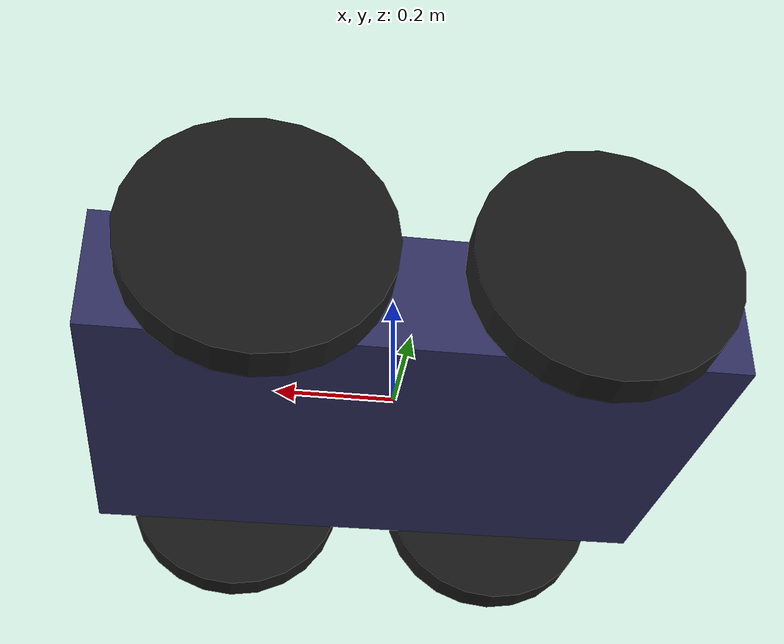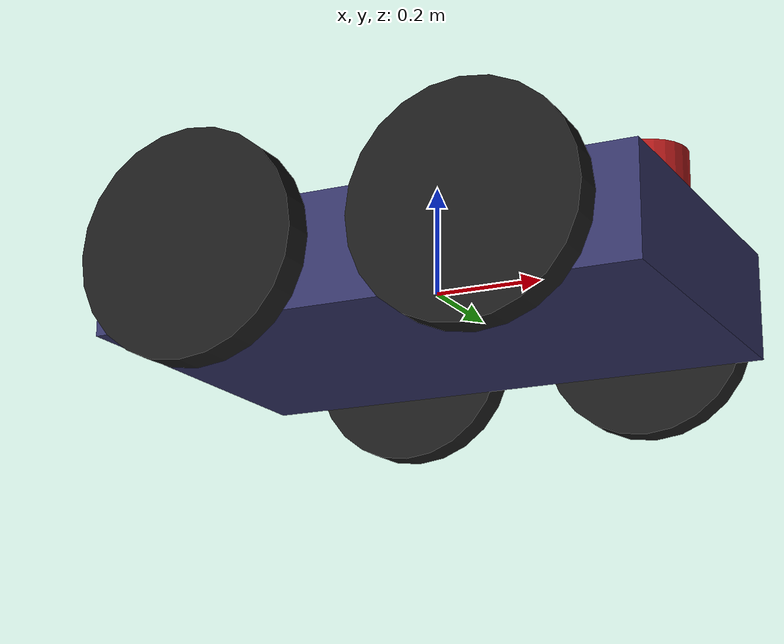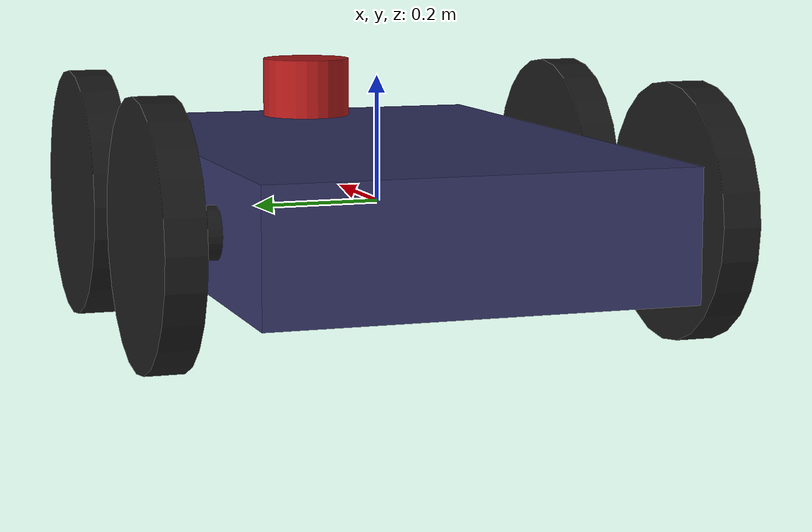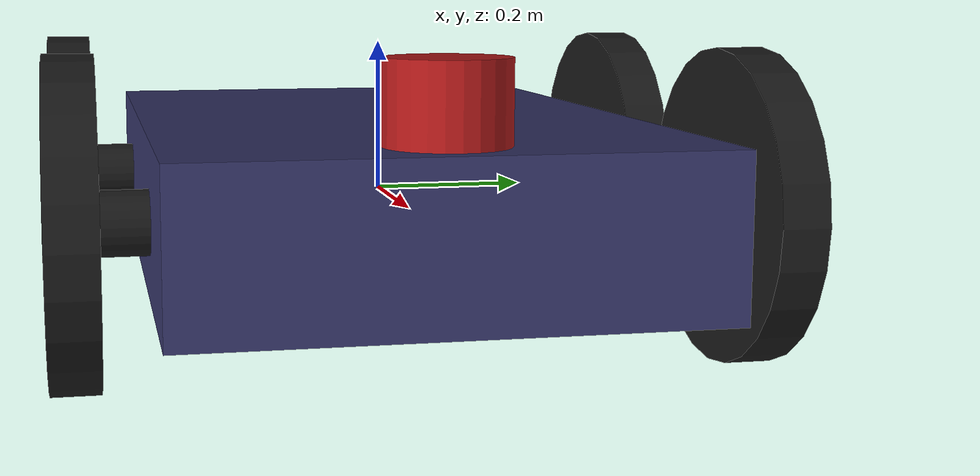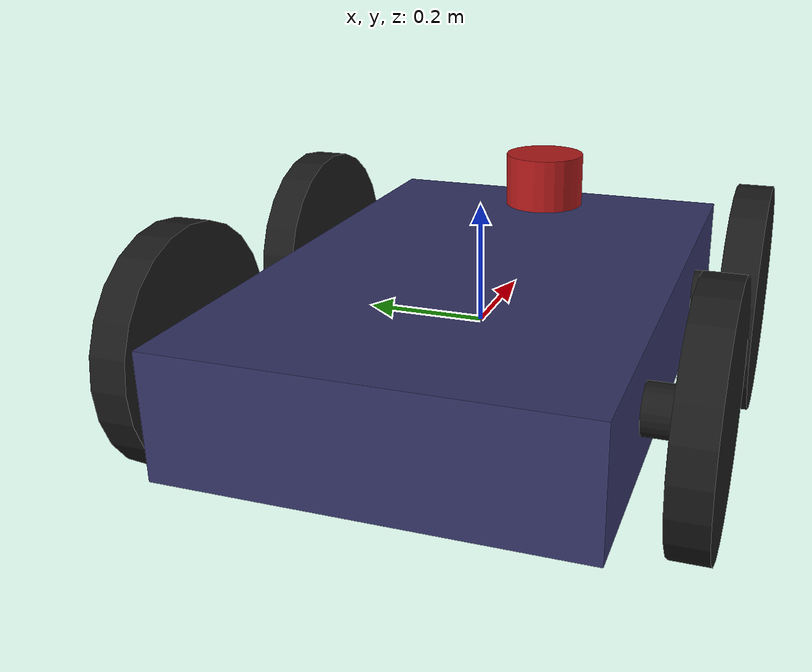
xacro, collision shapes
<?xml version="1.0" ?>

<robot name="robot" xmlns:xacro="http://www.ros.org/wiki/xacro">

    <xacro:include filename="$(find final_project)/urdf/robot.gazebo" />

    <!-- Parameters -->
    <xacro:property name="chassis_mass" value="10" />
    <xacro:property name="pi" value="3.1415926535897931"/>

    <!-- Link - chassis -->
    <link name="link_chassis">
        <inertial>
            <mass value="${chassis_mass}" />
            <origin xyz="0 0 0.3" rpy="0 0 0" />
            <inertia ixx="1.5417" ixy="0" ixz="0" iyy="3.467" iyz="0" izz="4.742" />
        </inertial>

        <collision>
            <geometry>
                <box size="1 0.65 0.2" />
            </geometry>
        </collision>

        <visual>
            <geometry>
                <mesh filename="package://robot_description/meshes/chassis.stl" scale="0.5 0.5 0.5" />
            </geometry>
            <material name="DarkBlue">
                <color rgba="0.2 0.2 0.4 1" />
            </material>
        </visual>
    </link>

    <!-- Joint - chassis / left wheel -->
    <joint name="joint_chassis_left_rear_wheel" type="continuous">
        <origin rpy="0 0 0" xyz="-0.25 0.325 0" />
        <child link="link_left_rear_wheel" />
        <parent link="link_chassis" />
        <axis rpy="0 0 0" xyz="0 1 0" />
        <limit effort="10000" velocity="1000" />
        <joint_properties damping="1.0" friction="1.0" />
    </joint>
    <!-- Link - left wheel -->
    <link name="link_left_rear_wheel">
        <inertial>
            <mass value="1" />
            <origin xyz="0 0 0" rpy="0 0 0" />
            <inertia ixx="0.002526666666667" ixy="0" ixz="0" iyy="0.002526666666667" iyz="0" izz="0.005"/>
        </inertial>

        <!-- Tires -->
        <collision>
            <origin rpy="${pi/2} 0 0" xyz="0 0.09 0" />
            <geometry>
                <cylinder length="0.06" radius="0.2"/>
            </geometry>
        </collision>
        <visual>
            <origin rpy="${pi/2} 0 0" xyz="0 0.09 0" />
            <geometry>
                <mesh filename="package://robot_description/meshes/wheel.stl" scale="0.5 0.5 0.5" />
            </geometry>
            <material name="Black">
                <color rgba="0.1 0.1 0.1 1" />
            </material>
        </visual>

        <!-- Axle -->
        <collision>
            <origin rpy="${pi/2} 0 0" xyz="0 0.03 0" />
            <geometry>
                <cylinder length="0.12" radius="0.04"/>
            </geometry>
        </collision>
        <visual>
            <origin rpy="${pi/2} 0 0" xyz="0 0.03 0" />
            <geometry>
                <cylinder length="0.12" radius="0.04"/>
            </geometry>
            <material name="Grey">
                <color rgba="0.6 0.6 0.6 1" />
            </material>
        </visual>

        <!-- Hubcap -->
        <visual>
            <origin rpy="${pi/2} 0 0" xyz="0 0.09 0" />
            <geometry>
                <box size="0.01 0.25 0.01" />
            </geometry>
            <material name="Grey">
                <color rgba="0.6 0.6 0.6 1" />
            </material>
        </visual>
    </link>

    <!-- Joint - chassis / left front wheel -->
    <joint name="joint_chassis_left_front_wheel" type="continuous">
        <origin rpy="0 0 0" xyz="0.25 0.325 0" />
        <child link="link_left_front_wheel" />
        <parent link="link_chassis" />
        <axis rpy="0 0 0" xyz="0 1 0" />
        <limit effort="10000" velocity="1000" />
        <joint_properties damping="1.0" friction="1.0" />
    </joint>
    <!-- Link - left front wheel -->
    <link name="link_left_front_wheel">
        <inertial>
            <mass value="1" />
            <origin xyz="0 0 0" rpy="0 0 0" />
            <inertia ixx="0.002526666666667" ixy="0" ixz="0" iyy="0.002526666666667" iyz="0" izz="0.005"/>
        </inertial>

        <!-- Tires -->
        <collision>
            <origin rpy="${pi/2} 0 0" xyz="0 0.09 0" />
            <geometry>
                <cylinder length="0.06" radius="0.2"/>
            </geometry>
        </collision>
        <visual>
            <origin rpy="${pi/2} 0 0" xyz="0 0.09 0" />
            <geometry>
                <mesh filename="package://robot_description/meshes/wheel.stl" scale="0.5 0.5 0.5" />
            </geometry>
            <material name="Black">
                <color rgba="0.1 0.1 0.1 1" />
            </material>
        </visual>

        <!-- Axle -->
        <collision>
            <origin rpy="${pi/2} 0 0" xyz="0 0.03 0" />
            <geometry>
                <cylinder length="0.12" radius="0.04"/>
            </geometry>
        </collision>
        <visual>
            <origin rpy="${pi/2} 0 0" xyz="0 0.03 0" />
            <geometry>
                <cylinder length="0.12" radius="0.04"/>
            </geometry>
            <material name="Grey">
                <color rgba="0.6 0.6 0.6 1" />
            </material>
        </visual>

        <!-- Hubcap -->
        <visual>
            <origin rpy="${pi/2} 0 0" xyz="0 0.09 0" />
            <geometry>
                <box size="0.01 0.25 0.01" />
            </geometry>
            <material name="Grey">
                <color rgba="0.6 0.6 0.6 1" />
            </material>
        </visual>
    </link>

    <!-- Joint - chassis / right wheel -->
    <joint name="joint_chassis_right_rear_wheel" type="continuous">
        <origin rpy="0 0 0" xyz="-0.25 -0.325 0" />
        <child link="link_right_rear_wheel" />
        <parent link="link_chassis" />
        <axis rpy="0 0 0" xyz="0 1 0" />
        <limit effort="10000" velocity="1000" />
        <joint_properties damping="1.0" friction="1.0" />
    </joint>
    <!-- Link - right wheel -->
    <link name="link_right_rear_wheel">
        <inertial>
            <mass value="1" />
            <origin xyz="0 0 0" rpy="0 0 0" />
            <inertia ixx="0.002526666666667" ixy="0" ixz="0" iyy="0.002526666666667" iyz="0" izz="0.005"/>
        </inertial>

        <!-- Tires -->
        <collision>
            <origin rpy="${pi/2} 0 0" xyz="0 -0.09 0" />
            <geometry>
                <cylinder length="0.06" radius="0.2"/>
            </geometry>
        </collision>
        <visual>
            <origin rpy="${pi/2} 0 0" xyz="0 -0.09 0" />
            <geometry>
                <mesh filename="package://robot_description/meshes/wheel.stl" scale="0.5 0.5 0.5" />
            </geometry>
            <material name="Black">
                <color rgba="0.1 0.1 0.1 1" />
            </material>
        </visual>

        <!-- Axle -->
        <collision>
            <origin rpy="${pi/2} 0 0" xyz="0 -0.03 0" />
            <geometry>
                <cylinder length="0.12" radius="0.04"/>
            </geometry>
        </collision>
        <visual>
            <origin rpy="${pi/2} 0 0" xyz="0 -0.03 0" />
            <geometry>
                <cylinder length="0.12" radius="0.04"/>
            </geometry>
            <material name="Grey">
                <color rgba="0.6 0.6 0.6 1" />
            </material>
        </visual>

        <!-- Hubcap -->
        <visual>
            <origin rpy="${pi/2} 0 0" xyz="0 -0.09 0" />
            <geometry>
                <box size="0.01 0.25 0.01" />
            </geometry>
            <material name="Grey">
                <color rgba="0.6 0.6 0.6 1" />
            </material>
        </visual>
    </link>

    <!-- Joint - chassis / right front wheel -->
    <joint name="joint_chassis_right_front_wheel" type="continuous">
        <origin rpy="0 0 0" xyz="0.25 -0.325 0" />
        <child link="link_right_front_wheel" />
        <parent link="link_chassis" />
        <axis rpy="0 0 0" xyz="0 1 0" />
        <limit effort="10000" velocity="1000" />
        <joint_properties damping="1.0" friction="1.0" />
    </joint>
    <!-- Link - right front wheel -->
    <link name="link_right_front_wheel">
        <inertial>
            <mass value="1" />
            <origin xyz="0 0 0" rpy="0 0 0" />
            <inertia ixx="0.002526666666667" ixy="0" ixz="0" iyy="0.002526666666667" iyz="0" izz="0.005"/>
        </inertial>

        <!-- Tires -->
        <collision>
            <origin rpy="${pi/2} 0 0" xyz="0 -0.09 0" />
            <geometry>
                <cylinder length="0.06" radius="0.2"/>
            </geometry>
        </collision>
        <visual>
            <origin rpy="${pi/2} 0 0" xyz="0 -0.09 0" />
            <geometry>
                <mesh filename="package://robot_description/meshes/wheel.stl" scale="0.5 0.5 0.5" />
            </geometry>
            <material name="Black">
                <color rgba="0.1 0.1 0.1 1" />
            </material>
        </visual>

        <!-- Axle -->
        <collision>
            <origin rpy="${pi/2} 0 0" xyz="0 -0.03 0" />
            <geometry>
                <cylinder length="0.12" radius="0.04"/>
            </geometry>
        </collision>
        <visual>
            <origin rpy="${pi/2} 0 0" xyz="0 -0.03 0" />
            <geometry>
                <cylinder length="0.12" radius="0.04"/>
            </geometry>
            <material name="Grey">
                <color rgba="0.6 0.6 0.6 1" />
            </material>
        </visual>

        <!-- Hubcap -->
        <visual>
            <origin rpy="${pi/2} 0 0" xyz="0 -0.09 0" />
            <geometry>
                <box size="0.01 0.25 0.01" />
            </geometry>
            <material name="Grey">
                <color rgba="0.6 0.6 0.6 1" />
            </material>
        </visual>
    </link>

    <!-- Laser scan -->
    <joint name="joint_laser_scan_chassis" type="fixed">
        <origin rpy="0 0 0" xyz="0.4 0 0.15" />
        <child link="link_laser_scan" />
        <parent link="link_chassis" />
        <joint_properties damping="1.0" friction="1.0" />
    </joint>
    <link name="link_laser_scan">
        <inertial>
            <origin xyz="0 0 0" rpy="0 0 0" />
            <mass value="0.5" />
            <inertia ixx="0.000252666666667" ixy="0" ixz="0" iyy="0.000252666666667" iyz="0" izz="0.0005"/>
        </inertial>
        <visual>
            <origin xyz="0 0 0" rpy="0 0 0" />
            <geometry>
                <cylinder radius="0.075" length="0.10"/>
            </geometry>
            <material name="Red">
                <color rgba="0.7 0.1 0.1 1" />
            </material>
        </visual>
        <collision>
            <origin xyz="0 0 0" rpy="0 0 0"/>
            <geometry>
                <cylinder radius="0.075" length="0.10"/>
            </geometry>
        </collision>
    </link>

    <!-- Robot tail -->
</robot>
